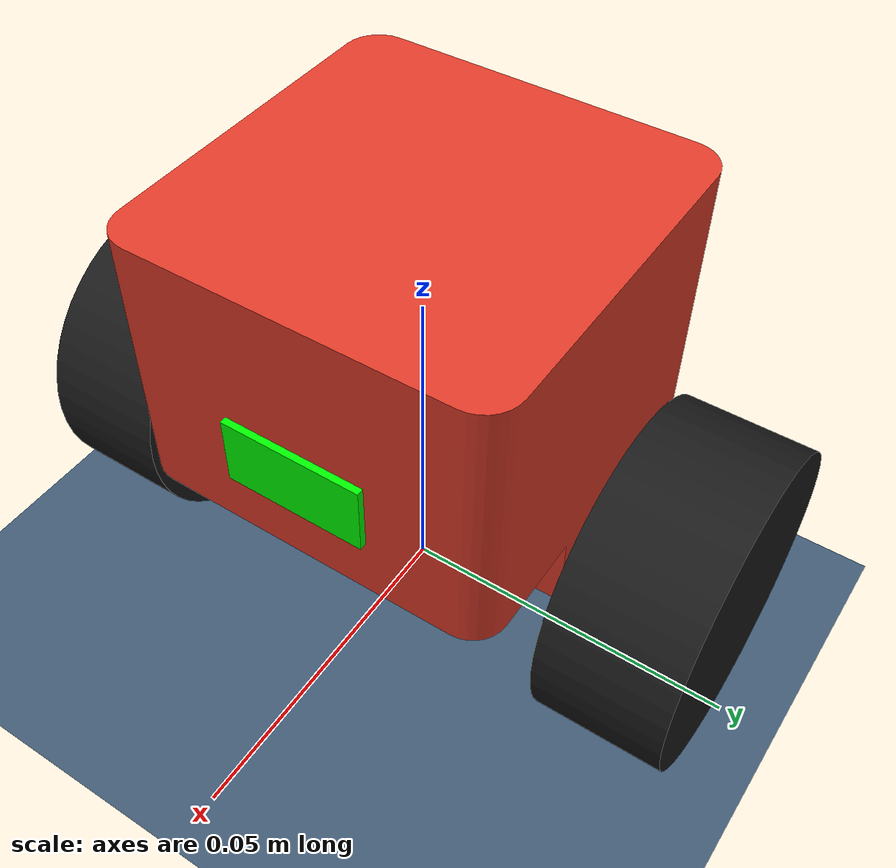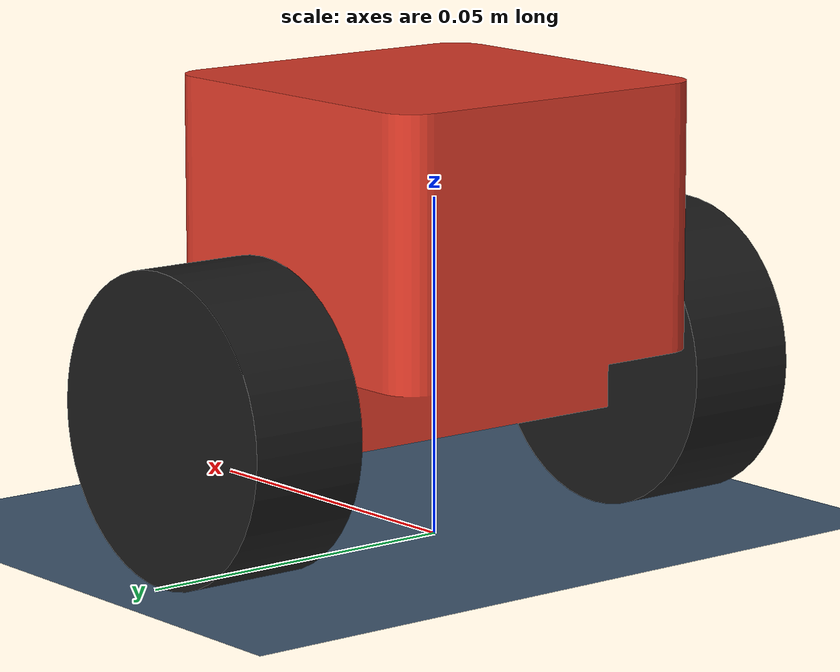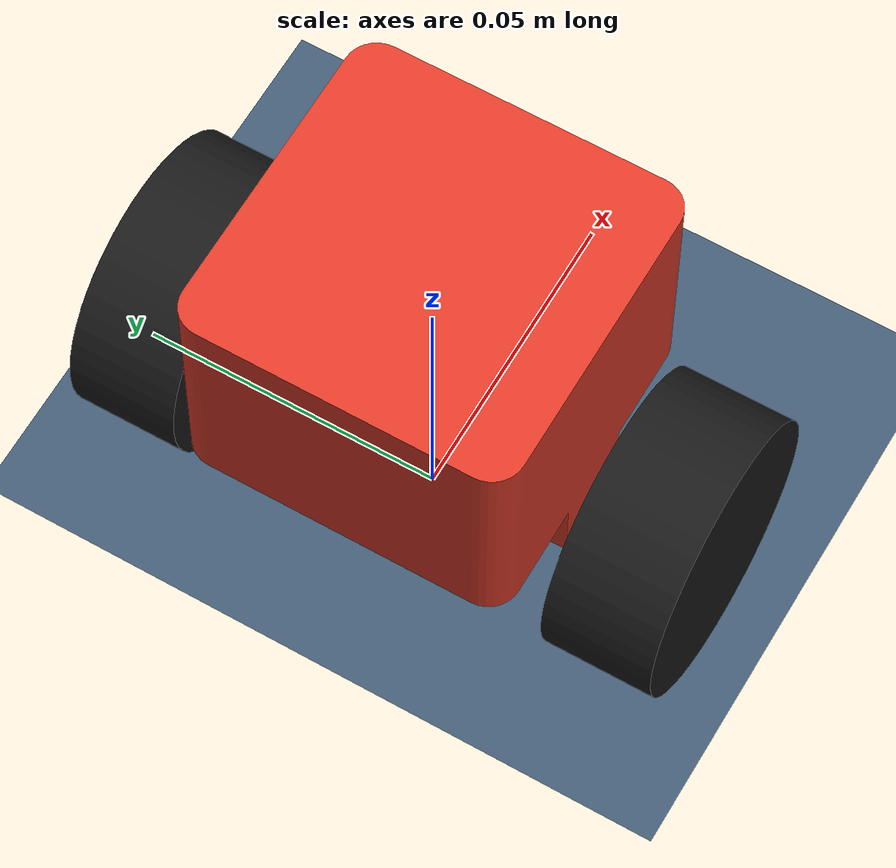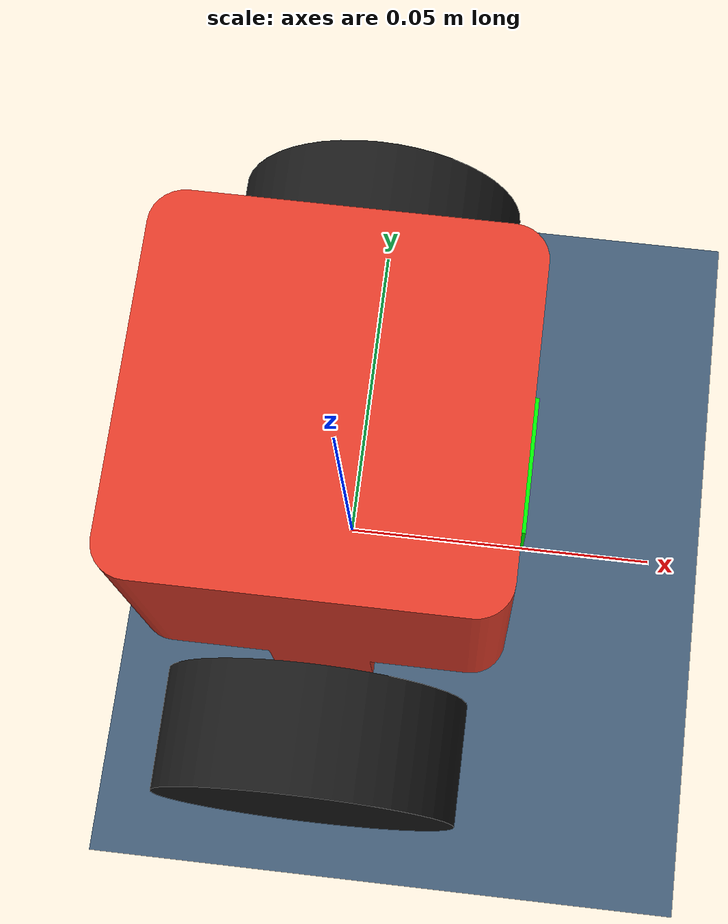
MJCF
<?xml version="1.0" encoding="UTF-8"?>

<!-- MJCF -->
<!-- MuJoCo Format: XML for describing physical components of the robot and how
     they fit together. Reference:
     https://mujoco.readthedocs.io/en/stable/XMLreference.html -->

<mujoco model="bala2-fire-simplified">

  <!-- Settings -->

  <compiler angle="radian"
            coordinate="local"
            meshdir="meshes"
            autolimits="true"/>

  <option timestep="0.005"
          gravity="0 0 -9.81"
          integrator="implicitfast"/>

  <!-- Specifies default values for various attributes -->
  <default>
    <geom contype="1"
          conaffinity="1"
          friction="0.8 0.005 0.0001"/>
  </default>

  <!-- Assets: meshes and visual textures -->

  <!-- Define assets to use when building the world -->
  <asset>
    <!-- Define mesh, file location, and scale (convert to meters) -->
    <mesh name="chassis_mesh"
          file="chassis.stl"
          scale="0.001 0.001 0.001"/>
    <mesh name="wheel_left_mesh"
          file="wheel_left.stl"
          scale="0.001 0.001 0.001"/>
    <mesh name="wheel_right_mesh"
          file="wheel_right.stl"
          scale="0.001 0.001 0.001"/>

    <!-- Use simple gradient for sky texture -->
    <texture type="skybox"
             builtin="gradient"
             rgb1="0.5 0.7 1"
             rgb2="0.95 0.95 1"
             width="256"
             height="256"/>

    <!-- Use built-in checker pattern to create grid texture -->
    <texture name="grid"
             type="2d"
             builtin="checker"
             rgb1="0.2 0.3 0.4"
             rgb2="0.3 0.4 0.5"
             width="512"
             height="512"
             mark="cross"
             markrgb="0.8 0.8 0.8"/>

    <!-- Create a grid material from the grid texture  -->
    <material name="grid"
              texture="grid"
              texrepeat="5 5"
              reflectance="0"
              specular="0"
              shininess="0"/>
  </asset>

  <!-- World and robot bodies -->

  <!-- The world and everything in it -->
  <worldbody>

    <!-- Lighting -->
    <light pos="0 0 1.5"
           dir="0 0 -1"
           diffuse="0.8 0.8 0.8"/>

    <!-- Ground plane at z=0, grid texture. If size x or y is set to 0, the
         plane is infinitely wide/long with 0 size. We'll make it large but
         finite. -->
    <geom name="ground"
          type="plane"
          size="5 5 0.1"
          material="grid"/>

    <body name="chassis" pos="0 0 0.0225">

      <!-- Free joint: robot can translate/orient freely in world frame -->
      <freejoint name="root"/>

      <!-- Visual and collision geometry -->
      <geom name="chassis_geom"
            type="mesh"
            mesh="chassis_mesh"
            rgba="0.87 0.23 0.16 1.0"/>

      <!-- Chassis inertial properties (copied from FreeCAD script output) -->
      <inertial pos="0.000000 0.000000 0.017000"
                mass="0.127000"
                diaginertia="0.000056790 0.000054532 0.000058722"/>

      <!-- Site for IMU sensor: measured from the chassis's origin, displayed
           as a blue ball (will be inside chassis) -->
      <site name="imu_site"
            type="box"
            pos="-0.008 0.0225 0.040"
            size="0.003 0.003 0.00035"
            rgba="0 0 1.0 1.0"/>

      <!-- Optional visual box to show the "front" of the robot -->
      <geom type="box"
            size="0.001 0.01 0.005"
            pos="0.027 0 0.02"
            rgba="0 1.0 0 1.0"
            contype="0"
            conaffinity="0"/>

      <!-- Left wheel -->
      <body name="wheel_left" pos="0 0.04 0">

        <joint name="left_wheel_joint"
               type="hinge"
               axis="0 1 0"
               damping="0.001"
               frictionloss="0.001"
               armature="4.5e-5"/>

        <!-- Assign a mesh and give it a color. Use default collision and
             friction values. -->
        <geom name="wheel_left_geom"
              type="mesh"
              mesh="wheel_left_mesh"
              rgba="0.1 0.1 0.1 1.0"/>

        <!-- Wheel inertial properties (copied from FreeCAD script output) -->
        <inertial pos="0.000000 0.000000 0.000000"
                  mass="0.017000"
                  diaginertia="0.000002611 0.000004303 0.000002611"/>
      </body>

      <!-- Right wheel -->
      <body name="wheel_right" pos="0 -0.04 0">
        <joint name="right_wheel_joint"
               type="hinge"
               axis="0 1 0"
               damping="0.001"
               frictionloss="0.001"
               armature="4.5e-5"/>
        <geom name="wheel_right_geom"
              type="mesh"
              mesh="wheel_right_mesh"
              rgba="0.1 0.1 0.1 1.0"/>
        <inertial pos="0.000000 0.000000 0.000000"
                  mass="0.017000"
                  diaginertia="0.000002611 0.000004303 0.000002611"/>
      </body>
    </body>
  </worldbody>

  <!-- Actuators: motors driving the wheel joints -->

  <actuator>

    <motor name="left_motor"
           joint="left_wheel_joint"
           gear="0.05"
           ctrlrange="-1 1"/>

    <!-- Right motor connected to the right wheel joint -->
    <motor name="right_motor"
           joint="right_wheel_joint"
           gear="0.05"
           ctrlrange="-1 1"/>
  </actuator>

  <!-- Sensors: IMU and encoders -->

  <!-- Define all the sensors and their locations -->
  <sensor>
    <accelerometer name="imu_accel" site="imu_site"/>
    <gyro name="imu_gyro" site="imu_site"/>
    <framequat name="imu_orientation" objtype="site" objname="imu_site"/>

    <!-- Wheel encoders (joint position and velocity) -->
    <jointpos name="left_wheel_pos" joint="left_wheel_joint"/>
    <jointpos name="right_wheel_pos" joint="right_wheel_joint"/>
    <jointvel name="left_wheel_vel" joint="left_wheel_joint"/>
    <jointvel name="right_wheel_vel" joint="right_wheel_joint"/>
  </sensor>

</mujoco>
